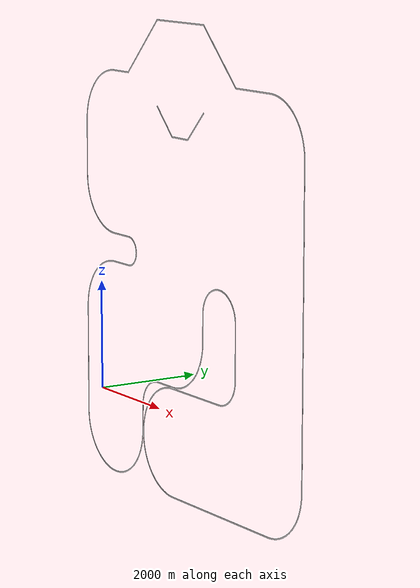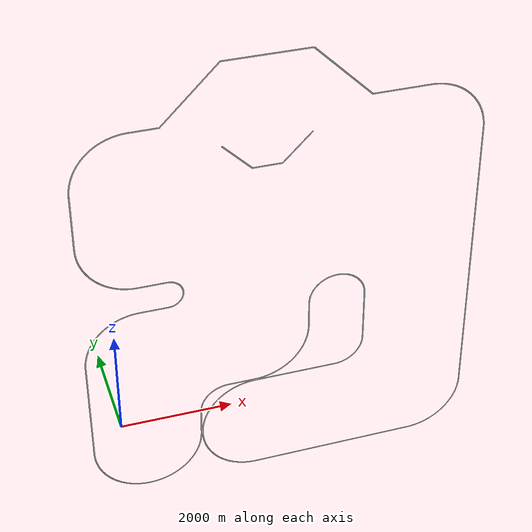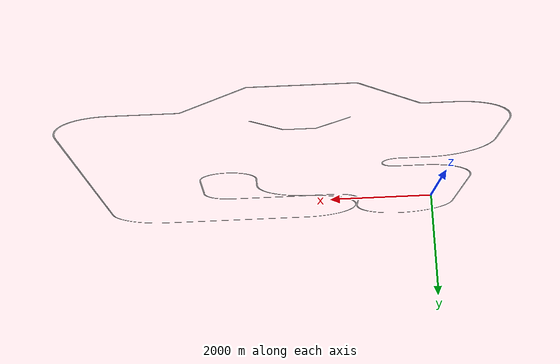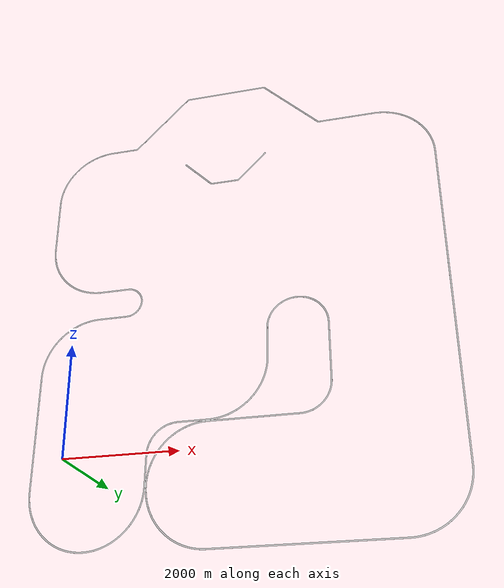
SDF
<?xml version="1.0"?>
<sdf version="1.6">
  <model name="yellowTrack">
    <static>true</static>
    <link name="link">

      <!-- Visual (what you see) -->
      <visual name="visual">
        <geometry>
          <mesh>
            <uri>model://model/yellowTrack/meshes/yellowTrack.stl</uri>
            <scale>1 1 1</scale>
          </mesh>
        </geometry>
      </visual>

      <!-- Collision (physics interaction) -->
      <collision name="collision">
        <geometry>
          <mesh>
            <uri>model://model/yellowTrack/meshes/yellowTrack.stl</uri>
            <scale>1 1 1</scale>
          </mesh>
        </geometry>
      </collision>

    </link>
  </model>
</sdf>
